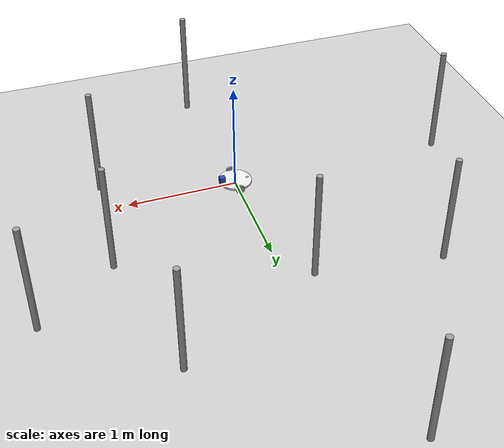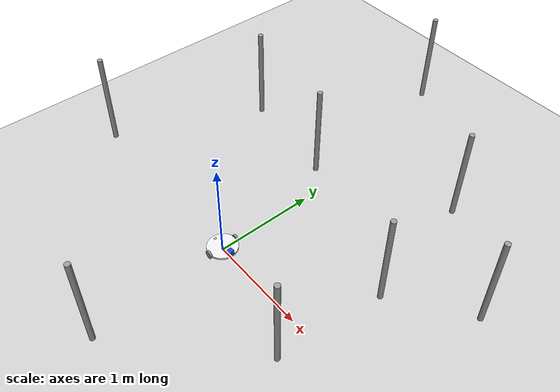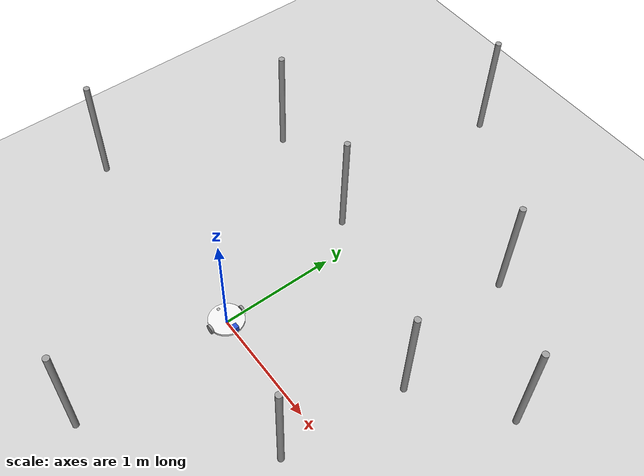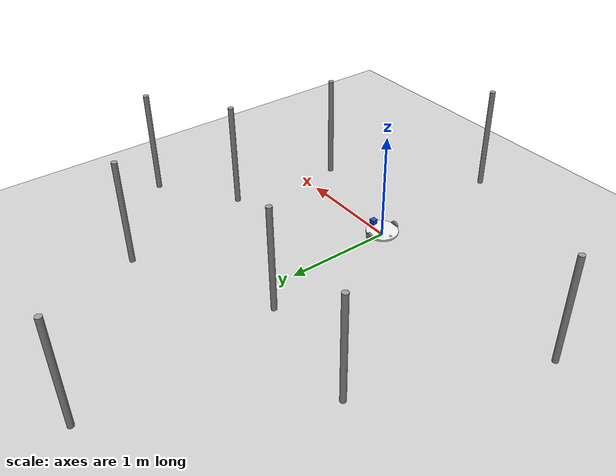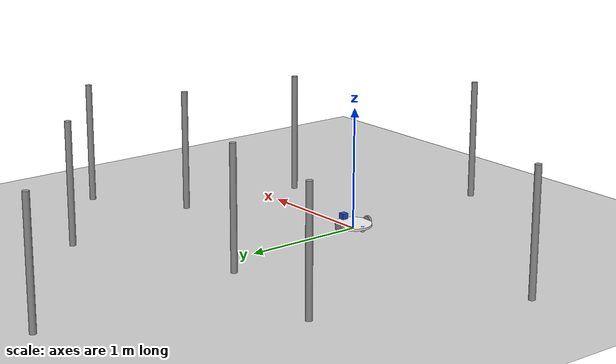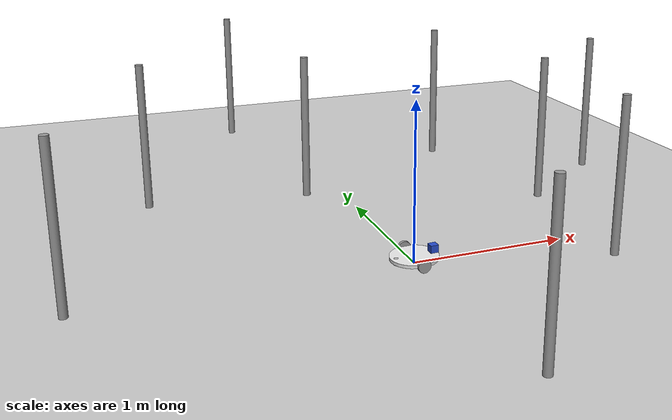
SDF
<sdf version="1.6">
 <world name="default">
  <light name="sun" type="directional">
   <pose>0 0 10 0 -0 0</pose>
   <diffuse>0.8 0.8 0.8 1</diffuse>
   <specular>0.1 0.1 0.1 1</specular>
   <attenuation>
    <range>1000</range>
    <constant>0.9</constant>
    <linear>0.01</linear>
    <quadratic>0.001</quadratic>
   </attenuation>
   <direction>-0.5 0.5 -1</direction>
  </light>
  <model name="ground_plane">
   <static>1</static>
   <link name="link">
    <collision name="collision">
     <geometry><plane><normal>0 0 1</normal><size>100 100</size></plane></geometry>
     <surface><friction><ode><mu>100</mu><mu2>50</mu2></ode></friction></surface>
    </collision>
    <visual name="visual">
     <cast_shadows>0</cast_shadows>
     <geometry><plane><normal>0 0 1</normal><size>100 100</size></plane></geometry>
     <material>
      <script><uri>file://media/materials/scripts/gazebo.material</uri><name>Gazebo/Grey</name></script>
     </material>
    </visual>
   </link>
  </model>
  <gravity>0 0 -9.8</gravity>
  <magnetic_field>6e-06 2.3e-05 -4.2e-05</magnetic_field>
  <atmosphere type="adiabatic"/>
  <physics name="default_physics" default="0" type="ode">
   <max_step_size>0.001</max_step_size>
   <real_time_factor>1</real_time_factor>
   <real_time_update_rate>1000</real_time_update_rate>
  </physics>
  <scene><ambient>0.4 0.4 0.4 1</ambient><background>0.7 0.7 0.7 1</background><shadows>1</shadows></scene>
  <spherical_coordinates>
   <surface_model>EARTH_WGS84</surface_model>
   <latitude_deg>0</latitude_deg>
   <longitude_deg>0</longitude_deg>
   <elevation>0</elevation>
   <heading_deg>0</heading_deg>
  </spherical_coordinates>
  <model name="diff_wheeled_robot">
   <link name="base_footprint">
    <inertial>
     <pose>-0.001667 0 0.041333 0 -0 0</pose>
     <mass>6.0001</mass>
     <inertia>
      <ixx>0.0304462</ixx>
      <ixy>0</ixy>
      <ixz>0.000191674</ixz>
      <iyy>0.0461545</iyy>
      <iyz>0</iyz>
      <izz>0.0740583</izz>
     </inertia>
    </inertial>
    <collision name="base_footprint_fixed_joint_lump__base_link_collision">
     <pose>0 0 0.04 0 -0 0</pose>
     <geometry><cylinder><length>0.02</length><radius>0.15</radius></cylinder></geometry>
    </collision>
    <collision name="base_footprint_fixed_joint_lump__caster_back_link_collision_1">
     <pose>-0.135 0 0.029 0 -0 0</pose>
     <geometry><sphere><radius>0.025</radius></sphere></geometry>
    </collision>
    <collision name="base_footprint_fixed_joint_lump__caster_front_link_collision_2">
     <pose>0.115 0 0.027 0 -0 0</pose>
     <geometry><sphere><radius>0.025</radius></sphere></geometry>
    </collision>
    <visual name="base_footprint_visual">
     <geometry><box><size>0.001 0.001 0.001</size></box></geometry>
     <material><script><uri>__default__</uri><name>__default__</name></script></material>
    </visual>
    <visual name="base_footprint_fixed_joint_lump__base_link_visual_1">
     <pose>0 0 0.04 0 -0 0</pose>
     <geometry><cylinder><length>0.02</length><radius>0.15</radius></cylinder></geometry>
     <material>
      <script><name>Gazebo/White</name><uri>file://media/materials/scripts/gazebo.material</uri></script>
     </material>
    </visual>
    <visual name="base_footprint_fixed_joint_lump__caster_back_link_visual_2">
     <pose>-0.115 0 0.029 0 -0 0</pose>
     <geometry><sphere><radius>0.025</radius></sphere></geometry>
     <material><script><uri>__default__</uri><name>__default__</name></script></material>
    </visual>
    <visual name="base_footprint_fixed_joint_lump__caster_front_link_visual_3">
     <pose>0.115 0 0.027 0 -0 0</pose>
     <geometry><sphere><radius>0.025</radius></sphere></geometry>
     <material><script><uri>__default__</uri><name>__default__</name></script></material>
    </visual>
    <visual name="base_footprint_fixed_joint_lump__hokuyo_link_visual_4">
     <pose>0.125 0 0.0725 0 -0 0</pose>
     <geometry><box><size>0.05 0.05 0.05</size></box></geometry>
     <material>
      <script><name>Gazebo/Blue</name><uri>file://media/materials/scripts/gazebo.material</uri></script>
     </material>
    </visual>
    <sensor name="head_hokuyo_sensor" type="ray">
     <visualize>0</visualize>
     <update_rate>40</update_rate>
     <ray>
      <scan>
       <horizontal>
        <samples>720</samples>
        <resolution>1</resolution>
        <min_angle>-1.5708</min_angle>
        <max_angle>1.5708</max_angle>
       </horizontal>
       <vertical><samples>1</samples><min_angle>0</min_angle><max_angle>0</max_angle></vertical>
      </scan>
      <range><min>0.1</min><max>10</max><resolution>0.001</resolution></range>
     </ray>
     <plugin name="gazebo_ros_head_hokuyo_controller" filename="libgazebo_ros_laser.so">
      <topicName>/scan</topicName>
      <frameName>hokuyo_link</frameName>
      <robotNamespace>/</robotNamespace>
     </plugin>
     <pose>0.125 0 0.0725 0 -0 0</pose>
    </sensor>
   </link>
   <link name="front_left_wheel">
    <pose>0 -0.15 0.04 0 -0 0</pose>
    <inertial>
     <mass>2.5</mass>
     <inertia>
      <ixx>0.00108333</ixx>
      <ixy>0</ixy>
      <ixz>0</ixz>
      <iyy>0.00108333</iyy>
      <iyz>0</iyz>
      <izz>0.002</izz>
     </inertia>
    </inertial>
    <collision name="front_left_wheel_collision">
     <pose>0 0 0 1.5708 -0 0</pose>
     <geometry><cylinder><length>0.02</length><radius>0.04</radius></cylinder></geometry>
     <surface>
      <contact><ode><kp>1e+07</kp><kd>1</kd></ode></contact>
      <friction><ode><mu>1</mu><mu2>1</mu2><fdir1>1 0 0</fdir1></ode></friction>
     </surface>
    </collision>
    <visual name="front_left_wheel_visual">
     <pose>0 0 0 1.5708 -0 0</pose>
     <geometry><cylinder><length>0.02</length><radius>0.04</radius></cylinder></geometry>
     <material>
      <script><name>Gazebo/Grey</name><uri>file://media/materials/scripts/gazebo.material</uri></script>
     </material>
    </visual>
   </link>
   <joint name="front_left_wheel_joint" type="revolute">
    <child>front_left_wheel</child>
    <parent>base_footprint</parent>
    <axis>
     <xyz>0 1 0</xyz>
     <limit><lower>-1e+16</lower><upper>1e+16</upper></limit>
     <dynamics><spring_reference>0</spring_reference><spring_stiffness>0</spring_stiffness></dynamics>
     <use_parent_model_frame>1</use_parent_model_frame>
    </axis>
   </joint>
   <link name="front_right_wheel">
    <pose>0 0.15 0.04 0 -0 0</pose>
    <inertial>
     <mass>2.5</mass>
     <inertia>
      <ixx>0.00108333</ixx>
      <ixy>0</ixy>
      <ixz>0</ixz>
      <iyy>0.00108333</iyy>
      <iyz>0</iyz>
      <izz>0.002</izz>
     </inertia>
    </inertial>
    <collision name="front_right_wheel_collision">
     <pose>0 0 0 1.5708 -0 0</pose>
     <geometry><cylinder><length>0.02</length><radius>0.04</radius></cylinder></geometry>
     <surface>
      <contact><ode><kp>1e+07</kp><kd>1</kd></ode></contact>
      <friction><ode><mu>1</mu><mu2>1</mu2><fdir1>1 0 0</fdir1></ode></friction>
     </surface>
    </collision>
    <visual name="front_right_wheel_visual">
     <pose>0 0 0 1.5708 -0 0</pose>
     <geometry><cylinder><length>0.02</length><radius>0.04</radius></cylinder></geometry>
     <material>
      <script><name>Gazebo/Grey</name><uri>file://media/materials/scripts/gazebo.material</uri></script>
     </material>
    </visual>
   </link>
   <joint name="front_right_wheel_joint" type="revolute">
    <child>front_right_wheel</child>
    <parent>base_footprint</parent>
    <axis>
     <xyz>0 1 0</xyz>
     <limit><lower>-1e+16</lower><upper>1e+16</upper></limit>
     <dynamics><spring_reference>0</spring_reference><spring_stiffness>0</spring_stiffness></dynamics>
     <use_parent_model_frame>1</use_parent_model_frame>
    </axis>
   </joint>
   <static>0</static>
   <plugin name="differential_drive_controller" filename="libgazebo_ros_diff_drive.so">
    <rosDebugLevel>Debug</rosDebugLevel>
    <publishWheelTF>false</publishWheelTF>
    <robotNamespace>/</robotNamespace>
    <publishTf>1</publishTf>
    <publishWheelJointState>false</publishWheelJointState>
    <alwaysOn>true</alwaysOn>
    <updateRate>100.0</updateRate>
    <leftJoint>front_left_wheel_joint</leftJoint>
    <rightJoint>front_right_wheel_joint</rightJoint>
    <wheelSeparation>0.3</wheelSeparation>
    <wheelDiameter>0.08</wheelDiameter>
    <broadcastTF>1</broadcastTF>
    <wheelTorque>30</wheelTorque>
    <wheelAcceleration>1.8</wheelAcceleration>
    <commandTopic>cmd_vel</commandTopic>
    <odometryFrame>odom</odometryFrame>
    <odometryTopic>odom</odometryTopic>
    <robotBaseFrame>base_footprint</robotBaseFrame>
   </plugin>
   <pose>0.000578 2e-06 1.5e-05 0 -0.02965 0.000781</pose>
  </model>
  <model name="unit_cylinder_0">
   <pose>-0.38617 3.1208 0.499991 -1e-06 4e-06 -0.000308</pose>
   <link name="link">
    <inertial>
     <mass>1</mass>
     <inertia><ixx>0.145833</ixx><ixy>0</ixy><ixz>0</ixz><iyy>0.145833</iyy><iyz>0</iyz><izz>0.125</izz></inertia>
    </inertial>
    <collision name="collision">
     <geometry><cylinder><radius>0.025932</radius><length>1</length></cylinder></geometry>
    </collision>
    <visual name="visual">
     <geometry><cylinder><radius>0.025932</radius><length>1</length></cylinder></geometry>
     <material>
      <script><name>Gazebo/Grey</name><uri>file://media/materials/scripts/gazebo.material</uri></script>
     </material>
    </visual>
   </link>
  </model>
  <model name="unit_cylinder_0_clone">
   <pose>1.03052 1.9942 0.499991 -1e-06 -1.2e-05 -5.1e-05</pose>
   <link name="link">
    <inertial>
     <mass>1</mass>
     <inertia><ixx>0.145833</ixx><ixy>0</ixy><ixz>0</ixz><iyy>0.145833</iyy><iyz>0</iyz><izz>0.125</izz></inertia>
    </inertial>
    <collision name="collision">
     <geometry><cylinder><radius>0.0259319</radius><length>1</length></cylinder></geometry>
    </collision>
    <visual name="visual">
     <geometry><cylinder><radius>0.0259319</radius><length>1</length></cylinder></geometry>
     <material>
      <script><name>Gazebo/Grey</name><uri>file://media/materials/scripts/gazebo.material</uri></script>
     </material>
    </visual>
   </link>
  </model>
  <model name="unit_cylinder_0_clone_0">
   <pose>-1.33149 1.51656 0.5 -1e-06 1e-06 -0.000156</pose>
   <link name="link">
    <inertial>
     <mass>1</mass>
     <inertia><ixx>0.145833</ixx><ixy>0</ixy><ixz>0</ixz><iyy>0.145833</iyy><iyz>0</iyz><izz>0.125</izz></inertia>
    </inertial>
    <collision name="collision">
     <geometry><cylinder><radius>0.0259319</radius><length>1</length></cylinder></geometry>
    </collision>
    <visual name="visual">
     <geometry><cylinder><radius>0.0259319</radius><length>1</length></cylinder></geometry>
     <material>
      <script><name>Gazebo/Grey</name><uri>file://media/materials/scripts/gazebo.material</uri></script>
     </material>
    </visual>
   </link>
  </model>
  <model name="unit_cylinder_0_clone_1">
   <pose>1.9823 1.24635 0.49999 -1e-06 2e-06 -0.000161</pose>
   <link name="link">
    <inertial>
     <mass>1</mass>
     <inertia><ixx>0.145833</ixx><ixy>0</ixy><ixz>0</ixz><iyy>0.145833</iyy><iyz>0</iyz><izz>0.125</izz></inertia>
    </inertial>
    <collision name="collision">
     <geometry><cylinder><radius>0.0259319</radius><length>1</length></cylinder></geometry>
    </collision>
    <visual name="visual">
     <geometry><cylinder><radius>0.0259319</radius><length>1</length></cylinder></geometry>
     <material>
      <script><name>Gazebo/Grey</name><uri>file://media/materials/scripts/gazebo.material</uri></script>
     </material>
    </visual>
   </link>
  </model>
  <model name="unit_cylinder_0_clone_2">
   <pose>-0.244359 1.36145 0.49999 -1e-06 0 -0.000192</pose>
   <link name="link">
    <inertial>
     <mass>1</mass>
     <inertia><ixx>0.145833</ixx><ixy>0</ixy><ixz>0</ixz><iyy>0.145833</iyy><iyz>0</iyz><izz>0.125</izz></inertia>
    </inertial>
    <collision name="collision">
     <geometry><cylinder><radius>0.0259319</radius><length>1</length></cylinder></geometry>
    </collision>
    <visual name="visual">
     <geometry><cylinder><radius>0.0259319</radius><length>1</length></cylinder></geometry>
     <material>
      <script><name>Gazebo/Grey</name><uri>file://media/materials/scripts/gazebo.material</uri></script>
     </material>
    </visual>
   </link>
  </model>
  <model name="unit_cylinder_0_clone_3">
   <pose>1.18682 -0.323622 0.499991 -1e-06 3e-06 -0.00015</pose>
   <link name="link">
    <inertial>
     <mass>1</mass>
     <inertia><ixx>0.145833</ixx><ixy>0</ixy><ixz>0</ixz><iyy>0.145833</iyy><iyz>0</iyz><izz>0.125</izz></inertia>
    </inertial>
    <collision name="collision">
     <geometry><cylinder><radius>0.0259319</radius><length>1</length></cylinder></geometry>
    </collision>
    <visual name="visual">
     <geometry><cylinder><radius>0.0259319</radius><length>1</length></cylinder></geometry>
     <material>
      <script><name>Gazebo/Grey</name><uri>file://media/materials/scripts/gazebo.material</uri></script>
     </material>
    </visual>
   </link>
  </model>
  <model name="unit_cylinder_0_clone_4">
   <pose>0.075169 -1.38723 0.499991 4e-06 -1e-05 -0.000134</pose>
   <link name="link">
    <inertial>
     <mass>1</mass>
     <inertia><ixx>0.145833</ixx><ixy>0</ixy><ixz>0</ixz><iyy>0.145833</iyy><iyz>0</iyz><izz>0.125</izz></inertia>
    </inertial>
    <collision name="collision">
     <geometry><cylinder><radius>0.0259319</radius><length>1</length></cylinder></geometry>
    </collision>
    <visual name="visual">
     <geometry><cylinder><radius>0.0259319</radius><length>1</length></cylinder></geometry>
     <material>
      <script><name>Gazebo/Grey</name><uri>file://media/materials/scripts/gazebo.material</uri></script>
     </material>
    </visual>
   </link>
  </model>
  <model name="unit_cylinder_0_clone_5">
   <pose>1.28752 0.749159 0.49999 -2e-06 3e-06 -9.6e-05</pose>
   <link name="link">
    <inertial>
     <mass>1</mass>
     <inertia><ixx>0.145833</ixx><ixy>0</ixy><ixz>0</ixz><iyy>0.145833</iyy><iyz>0</iyz><izz>0.125</izz></inertia>
    </inertial>
    <collision name="collision">
     <geometry><cylinder><radius>0.0259319</radius><length>1</length></cylinder></geometry>
    </collision>
    <visual name="visual">
     <geometry><cylinder><radius>0.0259319</radius><length>1</length></cylinder></geometry>
     <material>
      <script><name>Gazebo/Grey</name><uri>file://media/materials/scripts/gazebo.material</uri></script>
     </material>
    </visual>
   </link>
  </model>
  <model name="unit_cylinder_0_clone_6">
   <pose>-1.99065 0.024184 0.499991 -1e-06 2e-06 -9.5e-05</pose>
   <link name="link">
    <inertial>
     <mass>1</mass>
     <inertia><ixx>0.145833</ixx><ixy>0</ixy><ixz>0</ixz><iyy>0.145833</iyy><iyz>0</iyz><izz>0.125</izz></inertia>
    </inertial>
    <collision name="collision">
     <geometry><cylinder><radius>0.0259319</radius><length>1</length></cylinder></geometry>
    </collision>
    <visual name="visual">
     <geometry><cylinder><radius>0.0259319</radius><length>1</length></cylinder></geometry>
     <material>
      <script><name>Gazebo/Grey</name><uri>file://media/materials/scripts/gazebo.material</uri></script>
     </material>
    </visual>
   </link>
  </model>
 </world>
</sdf>
